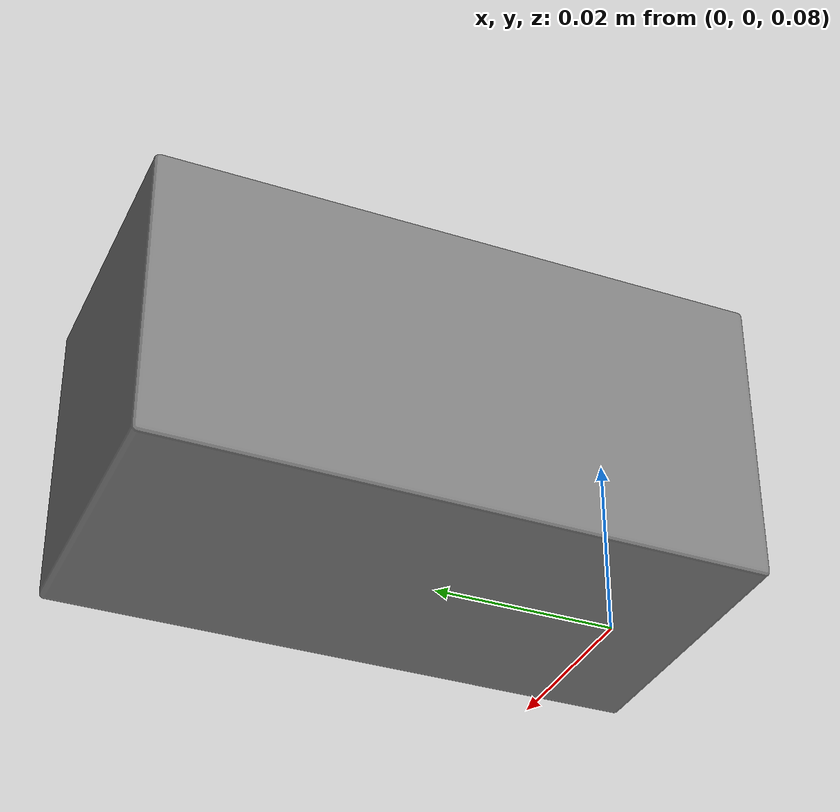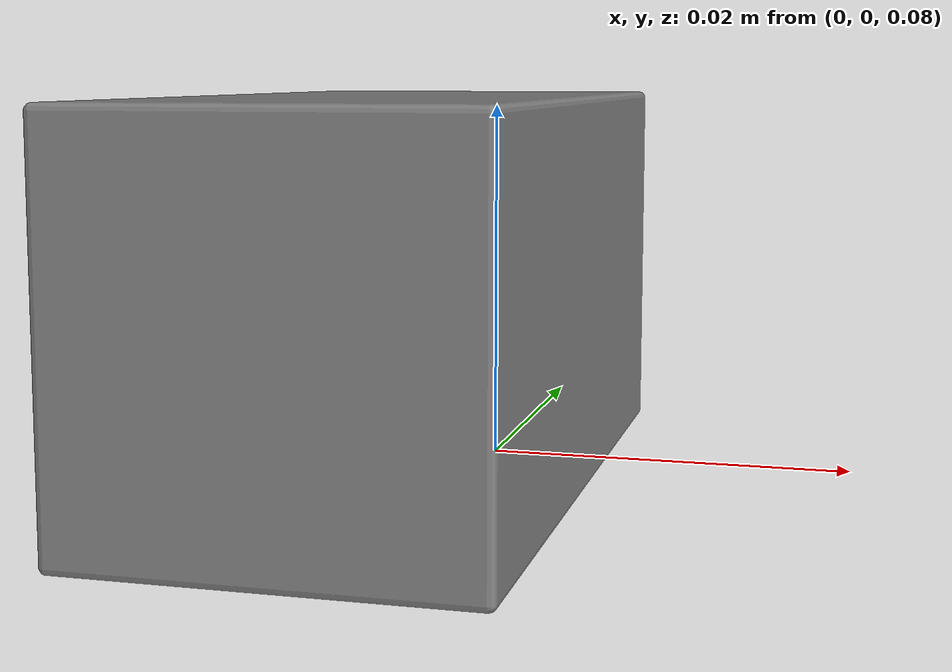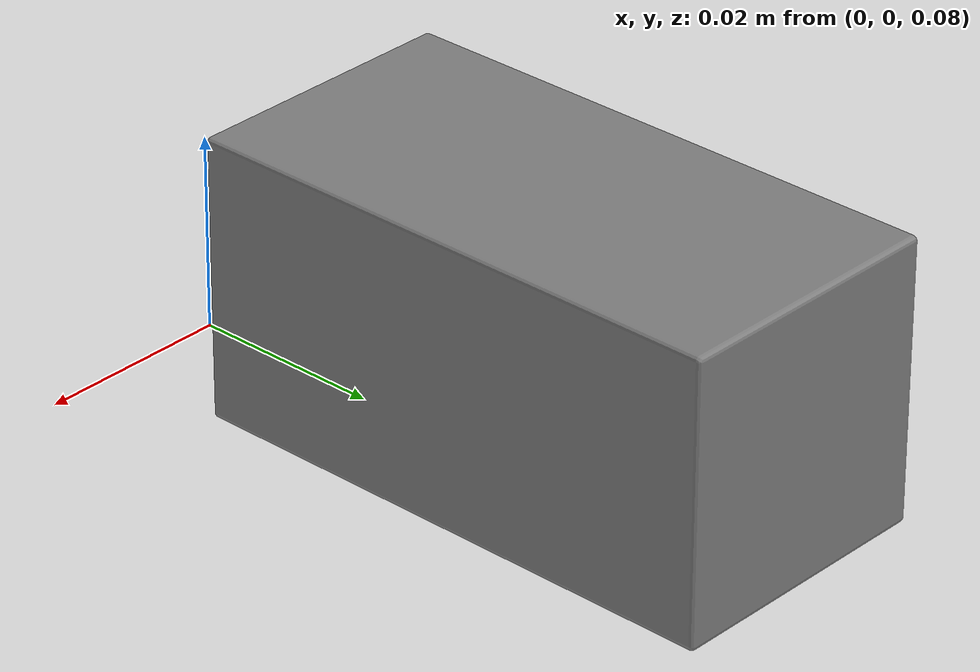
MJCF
<?xml version='1.0' encoding='utf8'?>
<mujoco model="cuboid_model">
    <compiler angle="degree" coordinate="local" />

    <option timestep="0.01" gravity="0 0 -9.81" />

    <asset>
        <mesh name="cuboid_vis" file="visual/cuboid.stl" scale="0.001 0.001 0.001" />
        <mesh name="cuboid_mesh" file="collision/cuboid.stl" scale="0.001 0.001 0.001" />
    </asset>

    <worldbody>
        <body name="cuboid_body" pos="0 0 0.1">
            <geom solimp="0.998 0.998 0.001" solref="0.001 1" density="100" friction="0.95 0.3 0.1" type="mesh" mesh="cuboid_vis" conaffinity="0" contype="0" group="1" />
            <geom name="cuboid_geom" type="mesh" mesh="cuboid_mesh" rgba="0.9 0 0 0.8" mass="0.1" />
        </body>
        <site rgba="0 0 0 0" size="0.005" pos="1.8000000023832283e-09 0.0001579002000000018 -0.03245274" name="bottom_site" />
        <site rgba="0 0 0 0" size="0.005" pos="1.8000000023832283e-09 0.0001579002000000018 0.033050489999999995" name="top_site" />
        <site rgba="0 0 0 0" size="0.005" pos="0.05891761439999999 0.057567376799999986 0.0002988749999999995" name="horizontal_radius_site" />
    </worldbody>
</mujoco>
